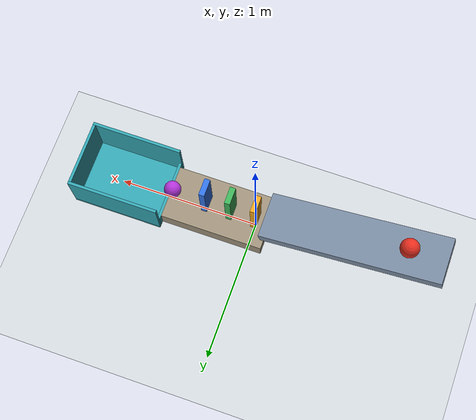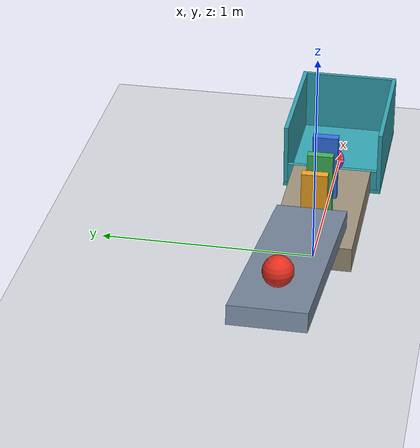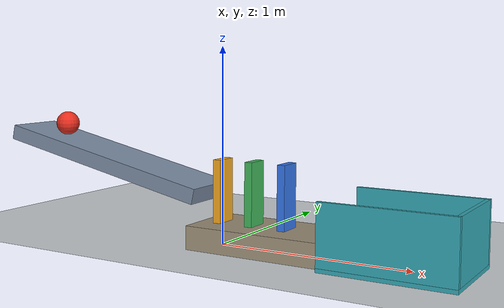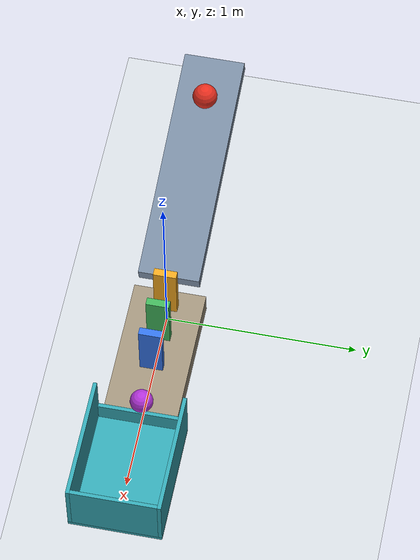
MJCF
<mujoco model="ramp_domino_cup">
  <compiler angle="degree"/>
  <option timestep="0.002" gravity="0 0 -9.81" integrator="implicitfast" solver="Newton" iterations="100" cone="elliptic"/>
  <size njmax="1000" nconmax="200"/>

  <visual>
    <headlight ambient="0.35 0.35 0.35" diffuse="0.7 0.7 0.7" specular="0.2 0.2 0.2"/>
    <rgba haze="0.85 0.9 0.95 1"/>
  </visual>

  <worldbody>
    <light name="main_light" pos="-0.5 -1.5 3" dir="0.2 0.3 -1"/>
    <camera name="overview" pos="0.05 -3 1.8" xyaxes="1 0 0 0 0.45 0.893"/>

    <geom name="floor" type="plane" size="4 3 0.1" rgba="0.82 0.84 0.86 1" friction="0.9 0.01 0.002" solref="0.008 1" solimp="0.95 0.99 0.001"/>

    <!-- The ramp descends in +x at 12 degrees. Its downhill surface endpoint is (-0.07, 0, 0.30). -->
    <body name="ramp" pos="-0.6896587 0 0.3908189" euler="0 12 0">
      <geom name="ramp_surface" type="box" size="0.625 0.16 0.04" rgba="0.48 0.55 0.64 1" friction="0.7 0.001 0.0001" condim="3" solref="0.008 1" solimp="0.95 0.99 0.001"/>
    </body>

    <!-- The deck's top is at z=0.12 and its downhill end is at x=0.63. -->
    <body name="stage" pos="0.265 0 0.06">
      <geom name="stage_deck" type="box" size="0.365 0.19 0.06" rgba="0.62 0.57 0.48 1" friction="0.9 0.005 0.001" condim="3" solref="0.008 1" solimp="0.95 0.99 0.001"/>
    </body>

    <!-- The initial sphere contact point is 1 m uphill along the ramp from its downhill endpoint. -->
    <body name="ball1" pos="-1.0346333 0 0.5714913">
      <freejoint name="ball1_free"/>
      <geom name="ball1_sphere" type="sphere" size="0.065" mass="0.08" rgba="0.9 0.18 0.12 1" friction="0.7 0.001 0.0001" condim="3" solref="0.008 1" solimp="0.95 0.99 0.001"/>
    </body>

    <body name="d1" pos="0 0 0.28">
      <freejoint name="d1_free"/>
      <geom name="d1_block" type="box" size="0.02 0.06 0.16" mass="0.3" rgba="0.95 0.65 0.12 1" friction="0.8 0.005 0.0001" condim="3" solref="0.008 1" solimp="0.95 0.99 0.001"/>
    </body>

    <body name="d2" pos="0.18 0 0.28">
      <freejoint name="d2_free"/>
      <geom name="d2_block" type="box" size="0.02 0.06 0.16" mass="0.3" rgba="0.25 0.7 0.35 1" friction="0.8 0.005 0.0001" condim="3" solref="0.008 1" solimp="0.95 0.99 0.001"/>
    </body>

    <body name="d3" pos="0.36 0 0.28">
      <freejoint name="d3_free"/>
      <geom name="d3_block" type="box" size="0.02 0.06 0.16" mass="0.3" rgba="0.2 0.45 0.9 1" friction="0.8 0.005 0.0001" condim="3" solref="0.008 1" solimp="0.95 0.99 0.001"/>
    </body>

    <!-- Priority 1 supplies low-friction, three-dimensional contacts with the deck, d3, and entry lip. -->
    <body name="ball2" pos="0.61 0 0.18">
      <freejoint name="ball2_free"/>
      <geom name="ball2_sphere" type="sphere" size="0.06" mass="0.07" rgba="0.7 0.2 0.85 1" priority="1" friction="0.15 0.001 0.0001" condim="3" solref="0.008 1" solimp="0.95 0.99 0.001"/>
    </body>

    <!-- The entry lip is flush with the deck, while the cup bottom is 0.10 m lower. -->
    <!-- Priority 2 activates dissipative six-dimensional contacts only inside the cup. -->
    <body name="cup" pos="0.95 0 0">
      <geom name="cup_bottom" type="box" pos="0 0 0.01" size="0.32 0.24 0.01" rgba="0.2 0.65 0.7 1" priority="2" friction="0.85 0.02 0.015" condim="6" solref="0.008 1" solimp="0.95 0.99 0.001"/>
      <geom name="cup_entry_lip" type="box" pos="-0.31 0 0.07" size="0.01 0.22 0.05" rgba="0.2 0.65 0.7 1" friction="0.15 0.001 0.0001" condim="3" solref="0.008 1" solimp="0.95 0.99 0.001"/>
      <geom name="cup_rear_wall" type="box" pos="0.31 0 0.17" size="0.01 0.22 0.15" rgba="0.2 0.65 0.7 1" priority="2" friction="0.85 0.02 0.015" condim="6" solref="0.008 1" solimp="0.95 0.99 0.001"/>
      <geom name="cup_left_wall" type="box" pos="0 0.23 0.17" size="0.32 0.01 0.15" rgba="0.2 0.65 0.7 1" priority="2" friction="0.85 0.02 0.015" condim="6" solref="0.008 1" solimp="0.95 0.99 0.001"/>
      <geom name="cup_right_wall" type="box" pos="0 -0.23 0.17" size="0.32 0.01 0.15" rgba="0.2 0.65 0.7 1" priority="2" friction="0.85 0.02 0.015" condim="6" solref="0.008 1" solimp="0.95 0.99 0.001"/>
    </body>
  </worldbody>

  <keyframe>
    <key name="start"/>
  </keyframe>
</mujoco>
